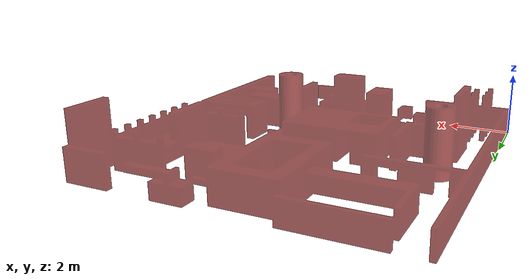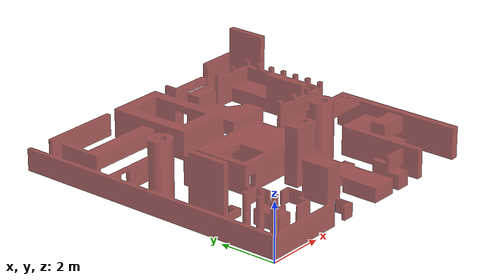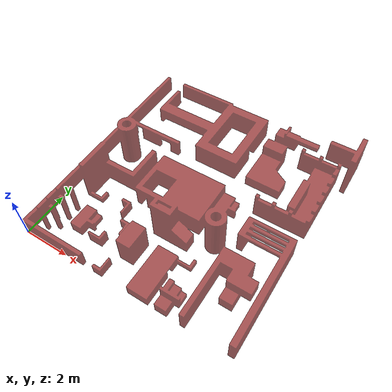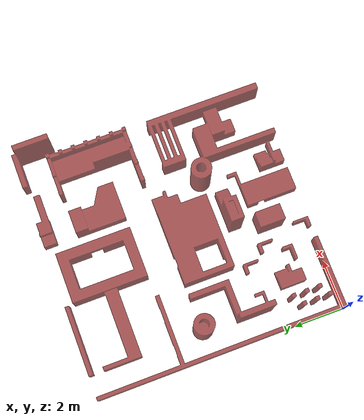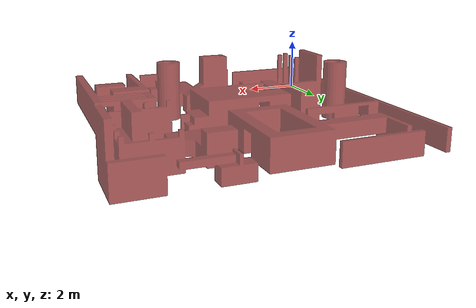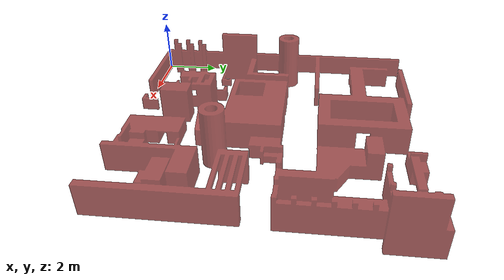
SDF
<?xml version="1.0" encoding="UTF-8"?>
<sdf version="1.6">
    <model name="robotics_gym">
        <static>true</static>
        <link name="base_link">
            <collision name="collision">
                <geometry>
                    <mesh>
                        <uri>meshes/my_robotics_gym.dae</uri>
                    </mesh>
                </geometry>
            </collision>
            <visual name="visual">
                <geometry>
                    <mesh>
                        <uri>meshes/my_robotics_gym.dae</uri>
                    </mesh>
                </geometry>
                <material>
                    <ambient>0.56 0.15 0.15 0.77</ambient>
                    <ambient>0.56 0.15 0.15 0.77</ambient>
                    <ambient>0.56 0.15 0.15 0.77</ambient>
                </material>
            </visual>
        </link>
    </model>
</sdf>
